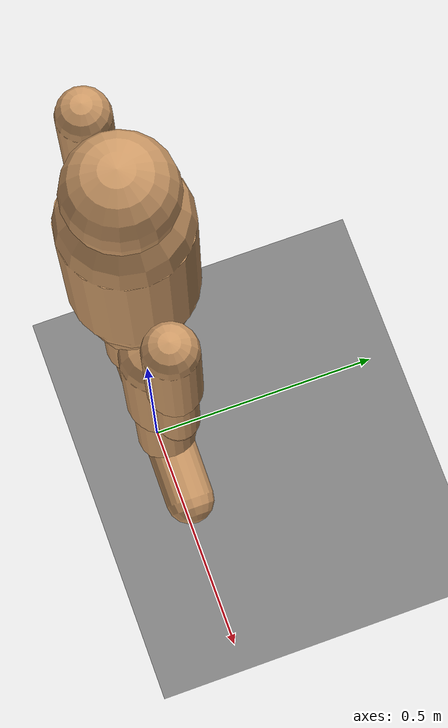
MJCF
<mujoco model="simple_human">
  <compiler angle="radian"/>

  <option timestep="0.002" gravity="0 0 -9.81"/>

  <default>
    <joint limited="true" damping="1.0" stiffness="5.0"/>
    <geom contype="1" conaffinity="1" condim="3" friction="1 0.05 0.05" rgba="0.8 0.6 0.4 1"/>
  </default>

  <worldbody>
    <!-- Floor -->
    <geom name="floor" type="plane" size="10 10 0.1" rgba="0.5 0.5 0.5 1" contype="1" conaffinity="1"/>

    <!-- Torso (root body) -->
    <body name="torso" pos="0 0 1.2">
      <freejoint name="root"/>
      <geom name="torso_geom" type="capsule" fromto="0 0 -0.15 0 0 0.15" size="0.12" rgba="0.8 0.6 0.4 1"/>

      <!-- Head -->
      <body name="head" pos="0 0 0.28">
        <joint name="neck" type="hinge" axis="0 1 0" range="-0.5 0.5" damping="2" stiffness="10"/>
        <geom name="head_geom" type="sphere" size="0.1" rgba="0.8 0.6 0.4 1"/>
      </body>

      <!-- Left Upper Arm -->
      <body name="left_upper_arm" pos="0.22 0 0.1">
        <joint name="left_shoulder" type="ball" damping="2.0"/>
        <geom name="luarm_geom" type="capsule" fromto="0 0 0 0.0 0 -0.22" size="0.05" rgba="0.8 0.6 0.4 1"/>

        <!-- Left Lower Arm -->
        <body name="left_lower_arm" pos="0 0 -0.22">
          <joint name="left_elbow" type="hinge" axis="0 1 0" range="-1.8 0.05" damping="1"/>
          <geom name="llarm_geom" type="capsule" fromto="0 0 0 0 0 -0.2" size="0.04" rgba="0.8 0.6 0.4 1"/>

          <!-- Left Hand -->
          <body name="left_hand" pos="0 0 -0.2">
            <geom name="lhand_geom" type="sphere" size="0.04" rgba="0.8 0.6 0.4 1"/>
          </body>
        </body>
      </body>

      <!-- Right Upper Arm -->
      <body name="right_upper_arm" pos="-0.22 0 0.1">
        <joint name="right_shoulder" type="ball" damping="2.0"/>
        <geom name="ruarm_geom" type="capsule" fromto="0 0 0 0 0 -0.22" size="0.05" rgba="0.8 0.6 0.4 1"/>

        <!-- Right Lower Arm -->
        <body name="right_lower_arm" pos="0 0 -0.22">
          <joint name="right_elbow" type="hinge" axis="0 1 0" range="-1.8 0.05" damping="1"/>
          <geom name="rlarm_geom" type="capsule" fromto="0 0 0 0 0 -0.2" size="0.04" rgba="0.8 0.6 0.4 1"/>

          <!-- Right Hand -->
          <body name="right_hand" pos="0 0 -0.2">
            <geom name="rhand_geom" type="sphere" size="0.04" rgba="0.8 0.6 0.4 1"/>
          </body>
        </body>
      </body>

      <!-- Pelvis -->
      <body name="pelvis" pos="0 0 -0.2">
        <joint name="lower_back" type="ball" damping="4.0"/>
        <geom name="pelvis_geom" type="capsule" fromto="0 0 -0.05 0 0 0.05" size="0.10" rgba="0.8 0.6 0.4 1"/>

        <!-- Left Upper Leg -->
        <body name="left_upper_leg" pos="0.1 0 -0.1">
          <joint name="left_hip" type="ball" damping="3.0"/>
          <geom name="luleg_geom" type="capsule" fromto="0 0 0 0 0 -0.28" size="0.07" rgba="0.8 0.6 0.4 1"/>

          <!-- Left Lower Leg -->
          <body name="left_lower_leg" pos="0 0 -0.28">
            <joint name="left_knee" type="hinge" axis="0 1 0" range="-1.8 0.05" damping="1.5"/>
            <geom name="llleg_geom" type="capsule" fromto="0 0 0 0 0 -0.26" size="0.06" rgba="0.8 0.6 0.4 1"/>

            <!-- Left Foot -->
            <body name="left_foot" pos="0 0 -0.26">
              <joint name="left_ankle" type="hinge" axis="0 1 0" range="-0.7 0.5" damping="1"/>
              <geom name="lfoot_geom" type="capsule" fromto="-0.04 0 0 0.14 0 -0.04" size="0.05" rgba="0.8 0.6 0.4 1"/>
            </body>
          </body>
        </body>

        <!-- Right Upper Leg -->
        <body name="right_upper_leg" pos="-0.1 0 -0.1">
          <joint name="right_hip" type="ball" damping="3.0"/>
          <geom name="ruleg_geom" type="capsule" fromto="0 0 0 0 0 -0.28" size="0.07" rgba="0.8 0.6 0.4 1"/>

          <!-- Right Lower Leg -->
          <body name="right_lower_leg" pos="0 0 -0.28">
            <joint name="right_knee" type="hinge" axis="0 1 0" range="-1.8 0.05" damping="1.5"/>
            <geom name="rlleg_geom" type="capsule" fromto="0 0 0 0 0 -0.26" size="0.06" rgba="0.8 0.6 0.4 1"/>

            <!-- Right Foot -->
            <body name="right_foot" pos="0 0 -0.26">
              <joint name="right_ankle" type="hinge" axis="0 1 0" range="-0.7 0.5" damping="1"/>
              <geom name="rfoot_geom" type="capsule" fromto="-0.04 0 0 0.14 0 -0.04" size="0.05" rgba="0.8 0.6 0.4 1"/>
            </body>
          </body>
        </body>

      </body>
    </body>
  </worldbody>

  <actuator>
    <!-- Leg actuators for basic standing/motion -->
    <motor name="left_hip_x"    joint="left_hip"      gear="80"/>
    <motor name="right_hip_x"   joint="right_hip"     gear="80"/>
    <motor name="left_knee"     joint="left_knee"     gear="60"/>
    <motor name="right_knee"    joint="right_knee"    gear="60"/>
    <motor name="left_ankle"    joint="left_ankle"    gear="40"/>
    <motor name="right_ankle"   joint="right_ankle"   gear="40"/>
  </actuator>

</mujoco>
